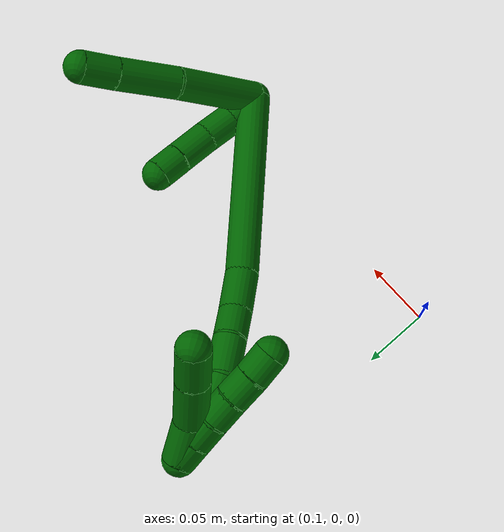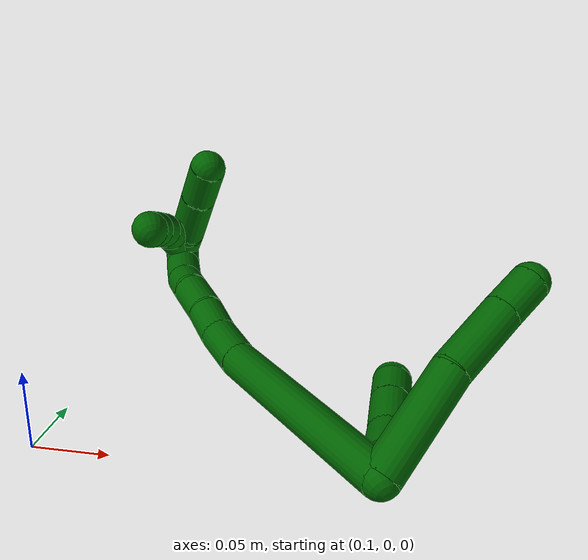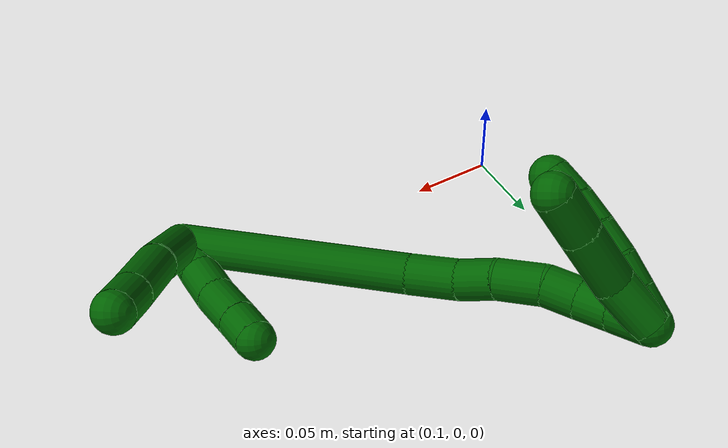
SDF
<sdf version="1.7">
 <world name="default">
  <model name="6">
   <static>0</static>
   <link name="6">
    <collision name="collision-cylinder-e_1_2_8">
     <pose>-0.03112 0.007193 -0.017819 -2.75791 -1.01763 2.47143</pose>
     <geometry><cylinder><radius>0.0125</radius><length>0.07315</length></cylinder></geometry>
     <surface>
      <friction><ode><mu>1.16</mu><mu2>1.16</mu2><slip1>0</slip1><slip2>0</slip2></ode></friction>
      <contact><ode><kp>1e+06</kp><kd>1</kd><max_vel>0</max_vel><min_depth>0.001</min_depth></ode></contact>
     </surface>
    </collision>
    <visual name="visual-cylinder-e_1_2_8">
     <pose>-0.03112 0.007193 -0.017819 -2.75791 -1.01763 2.47143</pose>
     <geometry><cylinder><radius>0.0125</radius><length>0.07315</length></cylinder></geometry>
     <material><ambient>0 0.392157 0.003922 1</ambient></material>
    </visual>
    <collision name="collision-cylinder-e_2_8_9">
     <pose>-0.082913 0.022822 -0.046195 -2.4675 -0.991838 1.99207</pose>
     <geometry><cylinder><radius>0.0125</radius><length>0.049397</length></cylinder></geometry>
     <surface>
      <friction><ode><mu>1.16</mu><mu2>1.16</mu2><slip1>0</slip1><slip2>0</slip2></ode></friction>
      <contact><ode><kp>1e+06</kp><kd>1</kd><max_vel>0</max_vel><min_depth>0.001</min_depth></ode></contact>
     </surface>
    </collision>
    <visual name="visual-cylinder-e_2_8_9">
     <pose>-0.082913 0.022822 -0.046195 -2.4675 -0.991838 1.99207</pose>
     <geometry><cylinder><radius>0.0125</radius><length>0.049397</length></cylinder></geometry>
     <material><ambient>0 0.392157 0.003922 1</ambient></material>
    </visual>
    <collision name="collision-cylinder-e_3_9_6">
     <pose>-0.115279 0.035897 -0.062247 -2.44026 -1.01943 1.9827</pose>
     <geometry><cylinder><radius>0.0125</radius><length>0.027454</length></cylinder></geometry>
     <surface>
      <friction><ode><mu>1.16</mu><mu2>1.16</mu2><slip1>0</slip1><slip2>0</slip2></ode></friction>
      <contact><ode><kp>1e+06</kp><kd>1</kd><max_vel>0</max_vel><min_depth>0.001</min_depth></ode></contact>
     </surface>
    </collision>
    <visual name="visual-cylinder-e_3_9_6">
     <pose>-0.115279 0.035897 -0.062247 -2.44026 -1.01943 1.9827</pose>
     <geometry><cylinder><radius>0.0125</radius><length>0.027454</length></cylinder></geometry>
     <material><ambient>0 0.392157 0.003922 1</ambient></material>
    </visual>
    <collision name="collision-cylinder-e_1_2_10">
     <pose>-0.000988 0.008434 -0.008773 -2.37588 -0.080996 0.200555</pose>
     <geometry><cylinder><radius>0.0125</radius><length>0.024418</length></cylinder></geometry>
     <surface>
      <friction><ode><mu>1.16</mu><mu2>1.16</mu2><slip1>0</slip1><slip2>0</slip2></ode></friction>
      <contact><ode><kp>1e+06</kp><kd>1</kd><max_vel>0</max_vel><min_depth>0.001</min_depth></ode></contact>
     </surface>
    </collision>
    <visual name="visual-cylinder-e_1_2_10">
     <pose>-0.000988 0.008434 -0.008773 -2.37588 -0.080996 0.200555</pose>
     <geometry><cylinder><radius>0.0125</radius><length>0.024418</length></cylinder></geometry>
     <material><ambient>0 0.392157 0.003922 1</ambient></material>
    </visual>
    <collision name="collision-cylinder-e_2_10_11">
     <pose>-0.005578 0.02387 -0.027826 -2.54368 -0.281868 0.862844</pose>
     <geometry><cylinder><radius>0.0125</radius><length>0.025899</length></cylinder></geometry>
     <surface>
      <friction><ode><mu>1.16</mu><mu2>1.16</mu2><slip1>0</slip1><slip2>0</slip2></ode></friction>
      <contact><ode><kp>1e+06</kp><kd>1</kd><max_vel>0</max_vel><min_depth>0.001</min_depth></ode></contact>
     </surface>
    </collision>
    <visual name="visual-cylinder-e_2_10_11">
     <pose>-0.005578 0.02387 -0.027826 -2.54368 -0.281868 0.862844</pose>
     <geometry><cylinder><radius>0.0125</radius><length>0.025899</length></cylinder></geometry>
     <material><ambient>0 0.392157 0.003922 1</ambient></material>
    </visual>
    <collision name="collision-cylinder-e_3_11_12">
     <pose>-0.013238 0.037367 -0.050246 -2.65029 -0.286684 1.0447</pose>
     <geometry><cylinder><radius>0.0125</radius><length>0.028708</length></cylinder></geometry>
     <surface>
      <friction><ode><mu>1.16</mu><mu2>1.16</mu2><slip1>0</slip1><slip2>0</slip2></ode></friction>
      <contact><ode><kp>1e+06</kp><kd>1</kd><max_vel>0</max_vel><min_depth>0.001</min_depth></ode></contact>
     </surface>
    </collision>
    <visual name="visual-cylinder-e_3_11_12">
     <pose>-0.013238 0.037367 -0.050246 -2.65029 -0.286684 1.0447</pose>
     <geometry><cylinder><radius>0.0125</radius><length>0.028708</length></cylinder></geometry>
     <material><ambient>0 0.392157 0.003922 1</ambient></material>
    </visual>
    <collision name="collision-cylinder-e_4_12_5">
     <pose>-0.02011 0.048921 -0.071131 -2.61714 -0.271487 0.941425</pose>
     <geometry><cylinder><radius>0.0125</radius><length>0.020975</length></cylinder></geometry>
     <surface>
      <friction><ode><mu>1.16</mu><mu2>1.16</mu2><slip1>0</slip1><slip2>0</slip2></ode></friction>
      <contact><ode><kp>1e+06</kp><kd>1</kd><max_vel>0</max_vel><min_depth>0.001</min_depth></ode></contact>
     </surface>
    </collision>
    <visual name="visual-cylinder-e_4_12_5">
     <pose>-0.02011 0.048921 -0.071131 -2.61714 -0.271487 0.941425</pose>
     <geometry><cylinder><radius>0.0125</radius><length>0.020975</length></cylinder></geometry>
     <material><ambient>0 0.392157 0.003922 1</ambient></material>
    </visual>
    <collision name="collision-cylinder-e_1_2_13">
     <pose>0.024571 0.005409 -0.06883 -3.06316 0.341905 -2.69464</pose>
     <geometry><cylinder><radius>0.0125</radius><length>0.146568</length></cylinder></geometry>
     <surface>
      <friction><ode><mu>1.16</mu><mu2>1.16</mu2><slip1>0</slip1><slip2>0</slip2></ode></friction>
      <contact><ode><kp>1e+06</kp><kd>1</kd><max_vel>0</max_vel><min_depth>0.001</min_depth></ode></contact>
     </surface>
    </collision>
    <visual name="visual-cylinder-e_1_2_13">
     <pose>0.024571 0.005409 -0.06883 -3.06316 0.341905 -2.69464</pose>
     <geometry><cylinder><radius>0.0125</radius><length>0.146568</length></cylinder></geometry>
     <material><ambient>0 0.392157 0.003922 1</ambient></material>
    </visual>
    <collision name="collision-cylinder-e_2_13_14">
     <pose>0.052207 0.01172 -0.153415 -3.08448 0.191872 -2.56452</pose>
     <geometry><cylinder><radius>0.0125</radius><length>0.032153</length></cylinder></geometry>
     <surface>
      <friction><ode><mu>1.16</mu><mu2>1.16</mu2><slip1>0</slip1><slip2>0</slip2></ode></friction>
      <contact><ode><kp>1e+06</kp><kd>1</kd><max_vel>0</max_vel><min_depth>0.001</min_depth></ode></contact>
     </surface>
    </collision>
    <visual name="visual-cylinder-e_2_13_14">
     <pose>0.052207 0.01172 -0.153415 -3.08448 0.191872 -2.56452</pose>
     <geometry><cylinder><radius>0.0125</radius><length>0.032153</length></cylinder></geometry>
     <material><ambient>0 0.392157 0.003922 1</ambient></material>
    </visual>
    <collision name="collision-cylinder-e_3_14_15">
     <pose>0.055809 0.011831 -0.181239 3.07624 0.044296 1.19119</pose>
     <geometry><cylinder><radius>0.0125</radius><length>0.024213</length></cylinder></geometry>
     <surface>
      <friction><ode><mu>1.16</mu><mu2>1.16</mu2><slip1>0</slip1><slip2>0</slip2></ode></friction>
      <contact><ode><kp>1e+06</kp><kd>1</kd><max_vel>0</max_vel><min_depth>0.001</min_depth></ode></contact>
     </surface>
    </collision>
    <visual name="visual-cylinder-e_3_14_15">
     <pose>0.055809 0.011831 -0.181239 3.07624 0.044296 1.19119</pose>
     <geometry><cylinder><radius>0.0125</radius><length>0.024213</length></cylinder></geometry>
     <material><ambient>0 0.392157 0.003922 1</ambient></material>
    </visual>
    <collision name="collision-cylinder-e_4_15_16">
     <pose>0.058598 0.012056 -0.207779 -3.07157 0.154038 -2.28949</pose>
     <geometry><cylinder><radius>0.0125</radius><length>0.029362</length></cylinder></geometry>
     <surface>
      <friction><ode><mu>1.16</mu><mu2>1.16</mu2><slip1>0</slip1><slip2>0</slip2></ode></friction>
      <contact><ode><kp>1e+06</kp><kd>1</kd><max_vel>0</max_vel><min_depth>0.001</min_depth></ode></contact>
     </surface>
    </collision>
    <visual name="visual-cylinder-e_4_15_16">
     <pose>0.058598 0.012056 -0.207779 -3.07157 0.154038 -2.28949</pose>
     <geometry><cylinder><radius>0.0125</radius><length>0.029362</length></cylinder></geometry>
     <material><ambient>0 0.392157 0.003922 1</ambient></material>
    </visual>
    <collision name="collision-cylinder-e_5_16_17">
     <pose>0.063024 0.016342 -0.232401 -2.82985 0.201096 -1.14146</pose>
     <geometry><cylinder><radius>0.0125</radius><length>0.021767</length></cylinder></geometry>
     <surface>
      <friction><ode><mu>1.16</mu><mu2>1.16</mu2><slip1>0</slip1><slip2>0</slip2></ode></friction>
      <contact><ode><kp>1e+06</kp><kd>1</kd><max_vel>0</max_vel><min_depth>0.001</min_depth></ode></contact>
     </surface>
    </collision>
    <visual name="visual-cylinder-e_5_16_17">
     <pose>0.063024 0.016342 -0.232401 -2.82985 0.201096 -1.14146</pose>
     <geometry><cylinder><radius>0.0125</radius><length>0.021767</length></cylinder></geometry>
     <material><ambient>0 0.392157 0.003922 1</ambient></material>
    </visual>
    <collision name="collision-cylinder-e_6_17_18">
     <pose>0.064445 0.02251 -0.253374 -2.88005 -0.067075 0.499532</pose>
     <geometry><cylinder><radius>0.0125</radius><length>0.02246</length></cylinder></geometry>
     <surface>
      <friction><ode><mu>1.16</mu><mu2>1.16</mu2><slip1>0</slip1><slip2>0</slip2></ode></friction>
      <contact><ode><kp>1e+06</kp><kd>1</kd><max_vel>0</max_vel><min_depth>0.001</min_depth></ode></contact>
     </surface>
    </collision>
    <visual name="visual-cylinder-e_6_17_18">
     <pose>0.064445 0.02251 -0.253374 -2.88005 -0.067075 0.499532</pose>
     <geometry><cylinder><radius>0.0125</radius><length>0.02246</length></cylinder></geometry>
     <material><ambient>0 0.392157 0.003922 1</ambient></material>
    </visual>
    <collision name="collision-cylinder-e_7_18_1">
     <pose>0.062227 0.028353 -0.275467 -2.8859 -0.125185 0.907296</pose>
     <geometry><cylinder><radius>0.0125</radius><length>0.023479</length></cylinder></geometry>
     <surface>
      <friction><ode><mu>1.16</mu><mu2>1.16</mu2><slip1>0</slip1><slip2>0</slip2></ode></friction>
      <contact><ode><kp>1e+06</kp><kd>1</kd><max_vel>0</max_vel><min_depth>0.001</min_depth></ode></contact>
     </surface>
    </collision>
    <visual name="visual-cylinder-e_7_18_1">
     <pose>0.062227 0.028353 -0.275467 -2.8859 -0.125185 0.907296</pose>
     <geometry><cylinder><radius>0.0125</radius><length>0.023479</length></cylinder></geometry>
     <material><ambient>0 0.392157 0.003922 1</ambient></material>
    </visual>
    <collision name="collision-cylinder-e_1_1_19">
     <pose>0.051793 0.02046 -0.278867 0.942828 -0.590023 -0.307359</pose>
     <geometry><cylinder><radius>0.0125</radius><length>0.032237</length></cylinder></geometry>
     <surface>
      <friction><ode><mu>1.16</mu><mu2>1.16</mu2><slip1>0</slip1><slip2>0</slip2></ode></friction>
      <contact><ode><kp>1e+06</kp><kd>1</kd><max_vel>0</max_vel><min_depth>0.001</min_depth></ode></contact>
     </surface>
    </collision>
    <visual name="visual-cylinder-e_1_1_19">
     <pose>0.051793 0.02046 -0.278867 0.942828 -0.590023 -0.307359</pose>
     <geometry><cylinder><radius>0.0125</radius><length>0.032237</length></cylinder></geometry>
     <material><ambient>0 0.392157 0.003922 1</ambient></material>
    </visual>
    <collision name="collision-cylinder-e_2_19_20">
     <pose>0.028693 -0.002691 -0.266916 1.25061 -0.828132 -0.614464</pose>
     <geometry><cylinder><radius>0.0125</radius><length>0.038366</length></cylinder></geometry>
     <surface>
      <friction><ode><mu>1.16</mu><mu2>1.16</mu2><slip1>0</slip1><slip2>0</slip2></ode></friction>
      <contact><ode><kp>1e+06</kp><kd>1</kd><max_vel>0</max_vel><min_depth>0.001</min_depth></ode></contact>
     </surface>
    </collision>
    <visual name="visual-cylinder-e_2_19_20">
     <pose>0.028693 -0.002691 -0.266916 1.25061 -0.828132 -0.614464</pose>
     <geometry><cylinder><radius>0.0125</radius><length>0.038366</length></cylinder></geometry>
     <material><ambient>0 0.392157 0.003922 1</ambient></material>
    </visual>
    <collision name="collision-cylinder-e_3_20_4">
     <pose>0.003566 -0.024315 -0.259925 1.26809 -0.845203 -0.638715</pose>
     <geometry><cylinder><radius>0.0125</radius><length>0.029397</length></cylinder></geometry>
     <surface>
      <friction><ode><mu>1.16</mu><mu2>1.16</mu2><slip1>0</slip1><slip2>0</slip2></ode></friction>
      <contact><ode><kp>1e+06</kp><kd>1</kd><max_vel>0</max_vel><min_depth>0.001</min_depth></ode></contact>
     </surface>
    </collision>
    <visual name="visual-cylinder-e_3_20_4">
     <pose>0.003566 -0.024315 -0.259925 1.26809 -0.845203 -0.638715</pose>
     <geometry><cylinder><radius>0.0125</radius><length>0.029397</length></cylinder></geometry>
     <material><ambient>0 0.392157 0.003922 1</ambient></material>
    </visual>
    <collision name="collision-cylinder-e_1_1_21">
     <pose>0.058297 0.022801 -0.282076 1.06921 -0.248989 -0.147927</pose>
     <geometry><cylinder><radius>0.0125</radius><length>0.02</length></cylinder></geometry>
     <surface>
      <friction><ode><mu>1.16</mu><mu2>1.16</mu2><slip1>0</slip1><slip2>0</slip2></ode></friction>
      <contact><ode><kp>1e+06</kp><kd>1</kd><max_vel>0</max_vel><min_depth>0.001</min_depth></ode></contact>
     </surface>
    </collision>
    <visual name="visual-cylinder-e_1_1_21">
     <pose>0.058297 0.022801 -0.282076 1.06921 -0.248989 -0.147927</pose>
     <geometry><cylinder><radius>0.0125</radius><length>0.02</length></cylinder></geometry>
     <material><ambient>0 0.392157 0.003922 1</ambient></material>
    </visual>
    <collision name="collision-cylinder-e_2_21_22">
     <pose>0.053507 0.005841 -0.272622 1.05534 -0.23473 -0.137215</pose>
     <geometry><cylinder><radius>0.0125</radius><length>0.02</length></cylinder></geometry>
     <surface>
      <friction><ode><mu>1.16</mu><mu2>1.16</mu2><slip1>0</slip1><slip2>0</slip2></ode></friction>
      <contact><ode><kp>1e+06</kp><kd>1</kd><max_vel>0</max_vel><min_depth>0.001</min_depth></ode></contact>
     </surface>
    </collision>
    <visual name="visual-cylinder-e_2_21_22">
     <pose>0.053507 0.005841 -0.272622 1.05534 -0.23473 -0.137215</pose>
     <geometry><cylinder><radius>0.0125</radius><length>0.02</length></cylinder></geometry>
     <material><ambient>0 0.392157 0.003922 1</ambient></material>
    </visual>
    <collision name="collision-cylinder-e_3_22_23">
     <pose>0.049816 -0.01054 -0.261876 0.926261 -0.136953 -0.068468</pose>
     <geometry><cylinder><radius>0.0125</radius><length>0.02</length></cylinder></geometry>
     <surface>
      <friction><ode><mu>1.16</mu><mu2>1.16</mu2><slip1>0</slip1><slip2>0</slip2></ode></friction>
      <contact><ode><kp>1e+06</kp><kd>1</kd><max_vel>0</max_vel><min_depth>0.001</min_depth></ode></contact>
     </surface>
    </collision>
    <visual name="visual-cylinder-e_3_22_23">
     <pose>0.049816 -0.01054 -0.261876 0.926261 -0.136953 -0.068468</pose>
     <geometry><cylinder><radius>0.0125</radius><length>0.02</length></cylinder></geometry>
     <material><ambient>0 0.392157 0.003922 1</ambient></material>
    </visual>
    <collision name="collision-cylinder-e_4_23_24">
     <pose>0.04777 -0.026074 -0.249477 0.868278 -0.068038 -0.031555</pose>
     <geometry><cylinder><radius>0.0125</radius><length>0.02</length></cylinder></geometry>
     <surface>
      <friction><ode><mu>1.16</mu><mu2>1.16</mu2><slip1>0</slip1><slip2>0</slip2></ode></friction>
      <contact><ode><kp>1e+06</kp><kd>1</kd><max_vel>0</max_vel><min_depth>0.001</min_depth></ode></contact>
     </surface>
    </collision>
    <visual name="visual-cylinder-e_4_23_24">
     <pose>0.04777 -0.026074 -0.249477 0.868278 -0.068038 -0.031555</pose>
     <geometry><cylinder><radius>0.0125</radius><length>0.02</length></cylinder></geometry>
     <material><ambient>0 0.392157 0.003922 1</ambient></material>
    </visual>
    <collision name="collision-cylinder-e_5_24_3">
     <pose>0.046176 -0.040765 -0.236025 0.790448 -0.091603 -0.038237</pose>
     <geometry><cylinder><radius>0.0125</radius><length>0.02</length></cylinder></geometry>
     <surface>
      <friction><ode><mu>1.16</mu><mu2>1.16</mu2><slip1>0</slip1><slip2>0</slip2></ode></friction>
      <contact><ode><kp>1e+06</kp><kd>1</kd><max_vel>0</max_vel><min_depth>0.001</min_depth></ode></contact>
     </surface>
    </collision>
    <visual name="visual-cylinder-e_5_24_3">
     <pose>0.046176 -0.040765 -0.236025 0.790448 -0.091603 -0.038237</pose>
     <geometry><cylinder><radius>0.0125</radius><length>0.02</length></cylinder></geometry>
     <material><ambient>0 0.392157 0.003922 1</ambient></material>
    </visual>
    <collision name="collision-sphere-3">
     <pose>0.045261 -0.047842 -0.229019 0 -0 0</pose>
     <geometry><sphere><radius>0.0125</radius></sphere></geometry>
     <surface>
      <friction><ode><mu>1.16</mu><mu2>1.16</mu2><slip1>0</slip1><slip2>0</slip2></ode></friction>
      <contact><ode><kp>1e+06</kp><kd>1</kd><max_vel>0</max_vel><min_depth>0.001</min_depth></ode></contact>
     </surface>
    </collision>
    <visual name="visual-sphere-3">
     <pose>0.045261 -0.047842 -0.229019 0 -0 0</pose>
     <geometry><sphere><radius>0.0125</radius></sphere></geometry>
     <material><ambient>0 0.392157 0.003922 1</ambient></material>
    </visual>
    <collision name="collision-sphere-24">
     <pose>0.047091 -0.033688 -0.243031 0 -0 0</pose>
     <geometry><sphere><radius>0.0125</radius></sphere></geometry>
     <surface>
      <friction><ode><mu>1.16</mu><mu2>1.16</mu2><slip1>0</slip1><slip2>0</slip2></ode></friction>
      <contact><ode><kp>1e+06</kp><kd>1</kd><max_vel>0</max_vel><min_depth>0.001</min_depth></ode></contact>
     </surface>
    </collision>
    <visual name="visual-sphere-24">
     <pose>0.047091 -0.033688 -0.243031 0 -0 0</pose>
     <geometry><sphere><radius>0.0125</radius></sphere></geometry>
     <material><ambient>0 0.392157 0.003922 1</ambient></material>
    </visual>
    <collision name="collision-sphere-23">
     <pose>0.04845 -0.018459 -0.255924 0 -0 0</pose>
     <geometry><sphere><radius>0.0125</radius></sphere></geometry>
     <surface>
      <friction><ode><mu>1.16</mu><mu2>1.16</mu2><slip1>0</slip1><slip2>0</slip2></ode></friction>
      <contact><ode><kp>1e+06</kp><kd>1</kd><max_vel>0</max_vel><min_depth>0.001</min_depth></ode></contact>
     </surface>
    </collision>
    <visual name="visual-sphere-23">
     <pose>0.04845 -0.018459 -0.255924 0 -0 0</pose>
     <geometry><sphere><radius>0.0125</radius></sphere></geometry>
     <material><ambient>0 0.392157 0.003922 1</ambient></material>
    </visual>
    <collision name="collision-sphere-22">
     <pose>0.051181 -0.002621 -0.267828 0 -0 0</pose>
     <geometry><sphere><radius>0.0125</radius></sphere></geometry>
     <surface>
      <friction><ode><mu>1.16</mu><mu2>1.16</mu2><slip1>0</slip1><slip2>0</slip2></ode></friction>
      <contact><ode><kp>1e+06</kp><kd>1</kd><max_vel>0</max_vel><min_depth>0.001</min_depth></ode></contact>
     </surface>
    </collision>
    <visual name="visual-sphere-22">
     <pose>0.051181 -0.002621 -0.267828 0 -0 0</pose>
     <geometry><sphere><radius>0.0125</radius></sphere></geometry>
     <material><ambient>0 0.392157 0.003922 1</ambient></material>
    </visual>
    <collision name="collision-sphere-21">
     <pose>0.055832 0.014303 -0.277416 0 -0 0</pose>
     <geometry><sphere><radius>0.0125</radius></sphere></geometry>
     <surface>
      <friction><ode><mu>1.16</mu><mu2>1.16</mu2><slip1>0</slip1><slip2>0</slip2></ode></friction>
      <contact><ode><kp>1e+06</kp><kd>1</kd><max_vel>0</max_vel><min_depth>0.001</min_depth></ode></contact>
     </surface>
    </collision>
    <visual name="visual-sphere-21">
     <pose>0.055832 0.014303 -0.277416 0 -0 0</pose>
     <geometry><sphere><radius>0.0125</radius></sphere></geometry>
     <material><ambient>0 0.392157 0.003922 1</ambient></material>
    </visual>
    <collision name="collision-sphere-4">
     <pose>-0.00743 -0.033625 -0.257017 0 -0 0</pose>
     <geometry><sphere><radius>0.0125</radius></sphere></geometry>
     <surface>
      <friction><ode><mu>1.16</mu><mu2>1.16</mu2><slip1>0</slip1><slip2>0</slip2></ode></friction>
      <contact><ode><kp>1e+06</kp><kd>1</kd><max_vel>0</max_vel><min_depth>0.001</min_depth></ode></contact>
     </surface>
    </collision>
    <visual name="visual-sphere-4">
     <pose>-0.00743 -0.033625 -0.257017 0 -0 0</pose>
     <geometry><sphere><radius>0.0125</radius></sphere></geometry>
     <material><ambient>0 0.392157 0.003922 1</ambient></material>
    </visual>
    <collision name="collision-sphere-20">
     <pose>0.014562 -0.015005 -0.262833 0 -0 0</pose>
     <geometry><sphere><radius>0.0125</radius></sphere></geometry>
     <surface>
      <friction><ode><mu>1.16</mu><mu2>1.16</mu2><slip1>0</slip1><slip2>0</slip2></ode></friction>
      <contact><ode><kp>1e+06</kp><kd>1</kd><max_vel>0</max_vel><min_depth>0.001</min_depth></ode></contact>
     </surface>
    </collision>
    <visual name="visual-sphere-20">
     <pose>0.014562 -0.015005 -0.262833 0 -0 0</pose>
     <geometry><sphere><radius>0.0125</radius></sphere></geometry>
     <material><ambient>0 0.392157 0.003922 1</ambient></material>
    </visual>
    <collision name="collision-sphere-11">
     <pose>-0.009179 0.030871 -0.038106 0 -0 0</pose>
     <geometry><sphere><radius>0.0125</radius></sphere></geometry>
     <surface>
      <friction><ode><mu>1.16</mu><mu2>1.16</mu2><slip1>0</slip1><slip2>0</slip2></ode></friction>
      <contact><ode><kp>1e+06</kp><kd>1</kd><max_vel>0</max_vel><min_depth>0.001</min_depth></ode></contact>
     </surface>
    </collision>
    <visual name="visual-sphere-11">
     <pose>-0.009179 0.030871 -0.038106 0 -0 0</pose>
     <geometry><sphere><radius>0.0125</radius></sphere></geometry>
     <material><ambient>0 0.392157 0.003922 1</ambient></material>
    </visual>
    <collision name="collision-sphere-10">
     <pose>-0.001976 0.016868 -0.017545 0 -0 0</pose>
     <geometry><sphere><radius>0.0125</radius></sphere></geometry>
     <surface>
      <friction><ode><mu>1.16</mu><mu2>1.16</mu2><slip1>0</slip1><slip2>0</slip2></ode></friction>
      <contact><ode><kp>1e+06</kp><kd>1</kd><max_vel>0</max_vel><min_depth>0.001</min_depth></ode></contact>
     </surface>
    </collision>
    <visual name="visual-sphere-10">
     <pose>-0.001976 0.016868 -0.017545 0 -0 0</pose>
     <geometry><sphere><radius>0.0125</radius></sphere></geometry>
     <material><ambient>0 0.392157 0.003922 1</ambient></material>
    </visual>
    <collision name="collision-sphere-6">
     <pose>-0.126972 0.040537 -0.067741 0 -0 0</pose>
     <geometry><sphere><radius>0.0125</radius></sphere></geometry>
     <surface>
      <friction><ode><mu>1.16</mu><mu2>1.16</mu2><slip1>0</slip1><slip2>0</slip2></ode></friction>
      <contact><ode><kp>1e+06</kp><kd>1</kd><max_vel>0</max_vel><min_depth>0.001</min_depth></ode></contact>
     </surface>
    </collision>
    <visual name="visual-sphere-6">
     <pose>-0.126972 0.040537 -0.067741 0 -0 0</pose>
     <geometry><sphere><radius>0.0125</radius></sphere></geometry>
     <material><ambient>0 0.392157 0.003922 1</ambient></material>
    </visual>
    <collision name="collision-sphere-9">
     <pose>-0.103587 0.031257 -0.056753 0 -0 0</pose>
     <geometry><sphere><radius>0.0125</radius></sphere></geometry>
     <surface>
      <friction><ode><mu>1.16</mu><mu2>1.16</mu2><slip1>0</slip1><slip2>0</slip2></ode></friction>
      <contact><ode><kp>1e+06</kp><kd>1</kd><max_vel>0</max_vel><min_depth>0.001</min_depth></ode></contact>
     </surface>
    </collision>
    <visual name="visual-sphere-9">
     <pose>-0.103587 0.031257 -0.056753 0 -0 0</pose>
     <geometry><sphere><radius>0.0125</radius></sphere></geometry>
     <material><ambient>0 0.392157 0.003922 1</ambient></material>
    </visual>
    <collision name="collision-sphere-2">
     <geometry><sphere><radius>0.0125</radius></sphere></geometry>
     <surface>
      <friction><ode><mu>1.16</mu><mu2>1.16</mu2><slip1>0</slip1><slip2>0</slip2></ode></friction>
      <contact><ode><kp>1e+06</kp><kd>1</kd><max_vel>0</max_vel><min_depth>0.001</min_depth></ode></contact>
     </surface>
    </collision>
    <visual name="visual-sphere-2">
     <geometry><sphere><radius>0.0125</radius></sphere></geometry>
     <material><ambient>0 0.392157 0.003922 1</ambient></material>
    </visual>
    <collision name="collision-sphere-19">
     <pose>0.042825 0.009622 -0.270998 0 -0 0</pose>
     <geometry><sphere><radius>0.0125</radius></sphere></geometry>
     <surface>
      <friction><ode><mu>1.16</mu><mu2>1.16</mu2><slip1>0</slip1><slip2>0</slip2></ode></friction>
      <contact><ode><kp>1e+06</kp><kd>1</kd><max_vel>0</max_vel><min_depth>0.001</min_depth></ode></contact>
     </surface>
    </collision>
    <visual name="visual-sphere-19">
     <pose>0.042825 0.009622 -0.270998 0 -0 0</pose>
     <geometry><sphere><radius>0.0125</radius></sphere></geometry>
     <material><ambient>0 0.392157 0.003922 1</ambient></material>
    </visual>
    <collision name="collision-sphere-8">
     <pose>-0.06224 0.014387 -0.035637 0 -0 0</pose>
     <geometry><sphere><radius>0.0125</radius></sphere></geometry>
     <surface>
      <friction><ode><mu>1.16</mu><mu2>1.16</mu2><slip1>0</slip1><slip2>0</slip2></ode></friction>
      <contact><ode><kp>1e+06</kp><kd>1</kd><max_vel>0</max_vel><min_depth>0.001</min_depth></ode></contact>
     </surface>
    </collision>
    <visual name="visual-sphere-8">
     <pose>-0.06224 0.014387 -0.035637 0 -0 0</pose>
     <geometry><sphere><radius>0.0125</radius></sphere></geometry>
     <material><ambient>0 0.392157 0.003922 1</ambient></material>
    </visual>
    <collision name="collision-sphere-12">
     <pose>-0.017297 0.043862 -0.062386 0 -0 0</pose>
     <geometry><sphere><radius>0.0125</radius></sphere></geometry>
     <surface>
      <friction><ode><mu>1.16</mu><mu2>1.16</mu2><slip1>0</slip1><slip2>0</slip2></ode></friction>
      <contact><ode><kp>1e+06</kp><kd>1</kd><max_vel>0</max_vel><min_depth>0.001</min_depth></ode></contact>
     </surface>
    </collision>
    <visual name="visual-sphere-12">
     <pose>-0.017297 0.043862 -0.062386 0 -0 0</pose>
     <geometry><sphere><radius>0.0125</radius></sphere></geometry>
     <material><ambient>0 0.392157 0.003922 1</ambient></material>
    </visual>
    <collision name="collision-sphere-5">
     <pose>-0.022922 0.05398 -0.079876 0 -0 0</pose>
     <geometry><sphere><radius>0.0125</radius></sphere></geometry>
     <surface>
      <friction><ode><mu>1.16</mu><mu2>1.16</mu2><slip1>0</slip1><slip2>0</slip2></ode></friction>
      <contact><ode><kp>1e+06</kp><kd>1</kd><max_vel>0</max_vel><min_depth>0.001</min_depth></ode></contact>
     </surface>
    </collision>
    <visual name="visual-sphere-5">
     <pose>-0.022922 0.05398 -0.079876 0 -0 0</pose>
     <geometry><sphere><radius>0.0125</radius></sphere></geometry>
     <material><ambient>0 0.392157 0.003922 1</ambient></material>
    </visual>
    <collision name="collision-sphere-13">
     <pose>0.049142 0.010819 -0.137659 0 -0 0</pose>
     <geometry><sphere><radius>0.0125</radius></sphere></geometry>
     <surface>
      <friction><ode><mu>1.16</mu><mu2>1.16</mu2><slip1>0</slip1><slip2>0</slip2></ode></friction>
      <contact><ode><kp>1e+06</kp><kd>1</kd><max_vel>0</max_vel><min_depth>0.001</min_depth></ode></contact>
     </surface>
    </collision>
    <visual name="visual-sphere-13">
     <pose>0.049142 0.010819 -0.137659 0 -0 0</pose>
     <geometry><sphere><radius>0.0125</radius></sphere></geometry>
     <material><ambient>0 0.392157 0.003922 1</ambient></material>
    </visual>
    <collision name="collision-sphere-14">
     <pose>0.055273 0.01262 -0.16917 0 -0 0</pose>
     <geometry><sphere><radius>0.0125</radius></sphere></geometry>
     <surface>
      <friction><ode><mu>1.16</mu><mu2>1.16</mu2><slip1>0</slip1><slip2>0</slip2></ode></friction>
      <contact><ode><kp>1e+06</kp><kd>1</kd><max_vel>0</max_vel><min_depth>0.001</min_depth></ode></contact>
     </surface>
    </collision>
    <visual name="visual-sphere-14">
     <pose>0.055273 0.01262 -0.16917 0 -0 0</pose>
     <geometry><sphere><radius>0.0125</radius></sphere></geometry>
     <material><ambient>0 0.392157 0.003922 1</ambient></material>
    </visual>
    <collision name="collision-sphere-15">
     <pose>0.056345 0.011041 -0.193308 0 -0 0</pose>
     <geometry><sphere><radius>0.0125</radius></sphere></geometry>
     <surface>
      <friction><ode><mu>1.16</mu><mu2>1.16</mu2><slip1>0</slip1><slip2>0</slip2></ode></friction>
      <contact><ode><kp>1e+06</kp><kd>1</kd><max_vel>0</max_vel><min_depth>0.001</min_depth></ode></contact>
     </surface>
    </collision>
    <visual name="visual-sphere-15">
     <pose>0.056345 0.011041 -0.193308 0 -0 0</pose>
     <geometry><sphere><radius>0.0125</radius></sphere></geometry>
     <material><ambient>0 0.392157 0.003922 1</ambient></material>
    </visual>
    <collision name="collision-sphere-16">
     <pose>0.06085 0.013071 -0.222251 0 -0 0</pose>
     <geometry><sphere><radius>0.0125</radius></sphere></geometry>
     <surface>
      <friction><ode><mu>1.16</mu><mu2>1.16</mu2><slip1>0</slip1><slip2>0</slip2></ode></friction>
      <contact><ode><kp>1e+06</kp><kd>1</kd><max_vel>0</max_vel><min_depth>0.001</min_depth></ode></contact>
     </surface>
    </collision>
    <visual name="visual-sphere-16">
     <pose>0.06085 0.013071 -0.222251 0 -0 0</pose>
     <geometry><sphere><radius>0.0125</radius></sphere></geometry>
     <material><ambient>0 0.392157 0.003922 1</ambient></material>
    </visual>
    <collision name="collision-sphere-17">
     <pose>0.065198 0.019612 -0.242551 0 -0 0</pose>
     <geometry><sphere><radius>0.0125</radius></sphere></geometry>
     <surface>
      <friction><ode><mu>1.16</mu><mu2>1.16</mu2><slip1>0</slip1><slip2>0</slip2></ode></friction>
      <contact><ode><kp>1e+06</kp><kd>1</kd><max_vel>0</max_vel><min_depth>0.001</min_depth></ode></contact>
     </surface>
    </collision>
    <visual name="visual-sphere-17">
     <pose>0.065198 0.019612 -0.242551 0 -0 0</pose>
     <geometry><sphere><radius>0.0125</radius></sphere></geometry>
     <material><ambient>0 0.392157 0.003922 1</ambient></material>
    </visual>
    <collision name="collision-sphere-18">
     <pose>0.063692 0.025407 -0.264198 0 -0 0</pose>
     <geometry><sphere><radius>0.0125</radius></sphere></geometry>
     <surface>
      <friction><ode><mu>1.16</mu><mu2>1.16</mu2><slip1>0</slip1><slip2>0</slip2></ode></friction>
      <contact><ode><kp>1e+06</kp><kd>1</kd><max_vel>0</max_vel><min_depth>0.001</min_depth></ode></contact>
     </surface>
    </collision>
    <visual name="visual-sphere-18">
     <pose>0.063692 0.025407 -0.264198 0 -0 0</pose>
     <geometry><sphere><radius>0.0125</radius></sphere></geometry>
     <material><ambient>0 0.392157 0.003922 1</ambient></material>
    </visual>
    <collision name="collision-sphere-1">
     <pose>0.060761 0.031298 -0.286736 0 -0 0</pose>
     <geometry><sphere><radius>0.0125</radius></sphere></geometry>
     <surface>
      <friction><ode><mu>1.16</mu><mu2>1.16</mu2><slip1>0</slip1><slip2>0</slip2></ode></friction>
      <contact><ode><kp>1e+06</kp><kd>1</kd><max_vel>0</max_vel><min_depth>0.001</min_depth></ode></contact>
     </surface>
    </collision>
    <visual name="visual-sphere-1">
     <pose>0.060761 0.031298 -0.286736 0 -0 0</pose>
     <geometry><sphere><radius>0.0125</radius></sphere></geometry>
     <material><ambient>0 0.392157 0.003922 1</ambient></material>
    </visual>
    <inertial>
     <pose>0.013482 0.010354 -0.139738 0 -0 0</pose>
     <mass>0.75</mass>
     <inertia>
      <ixx>-0.00033</ixx>
      <ixy>0</ixy>
      <ixz>0</ixz>
      <iyy>0.000207</iyy>
      <iyz>0</iyz>
      <izz>-8.7e-05</izz>
     </inertia>
    </inertial>
   </link>
   <pose>0.312183 -0.020261 0.017347 -2.07421 0.700529 -2.89176</pose>
  </model>
 </world>
</sdf>
